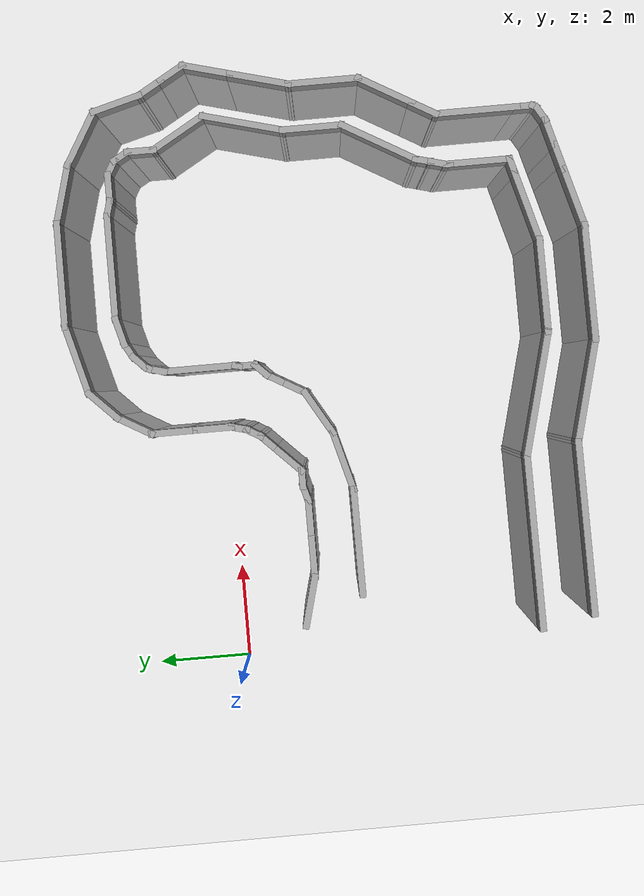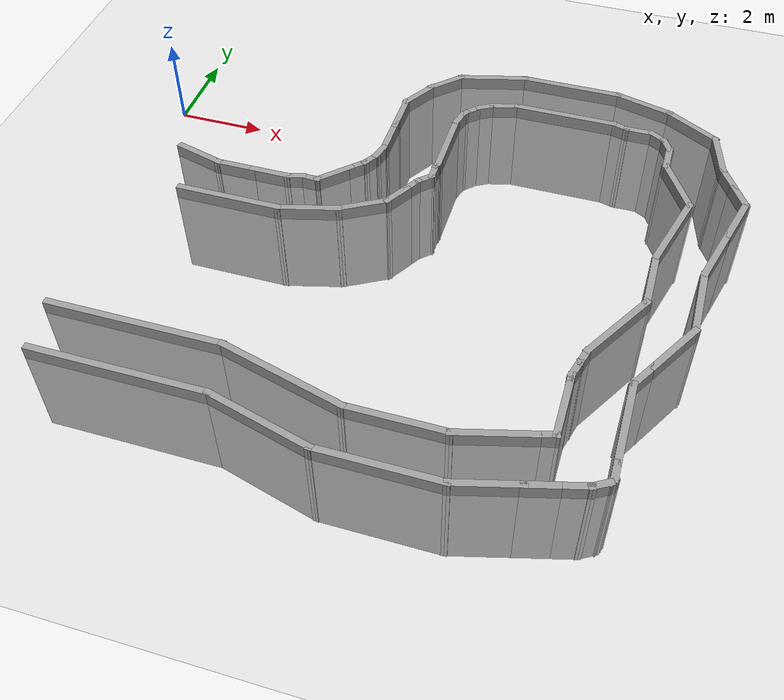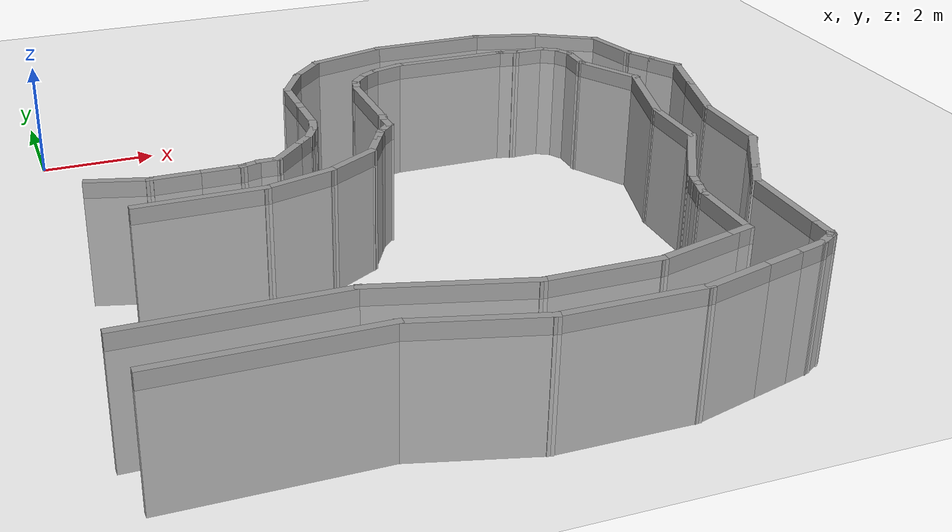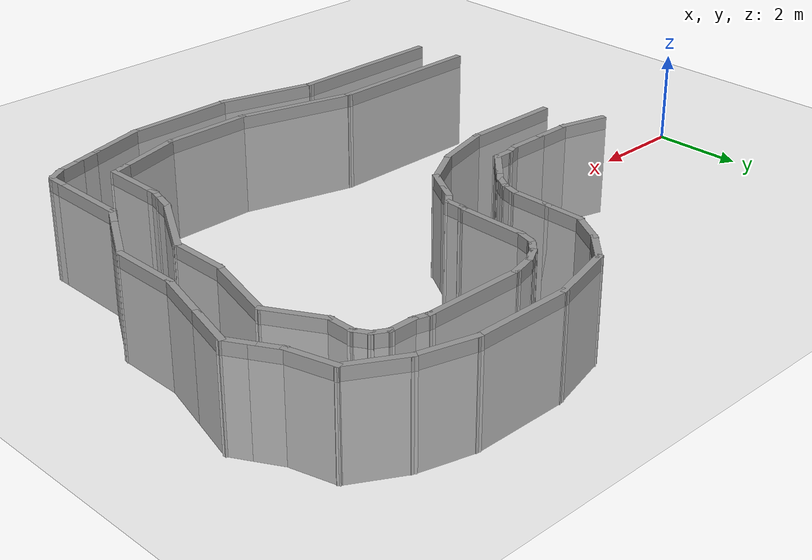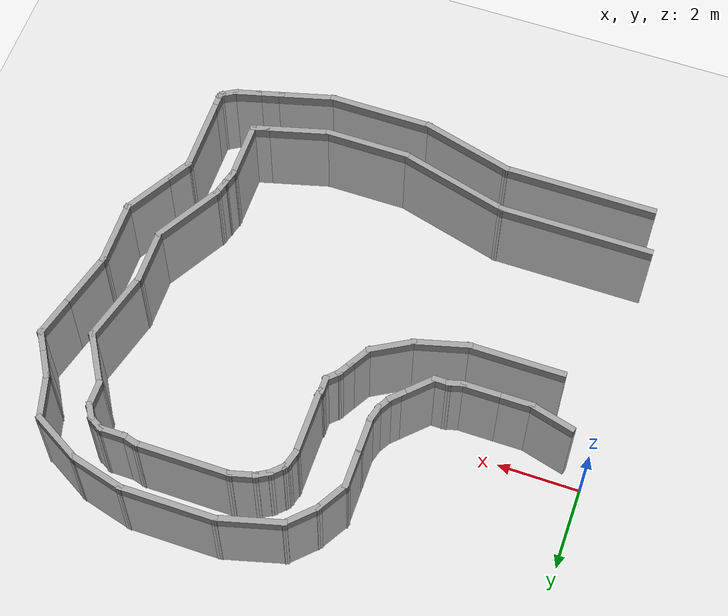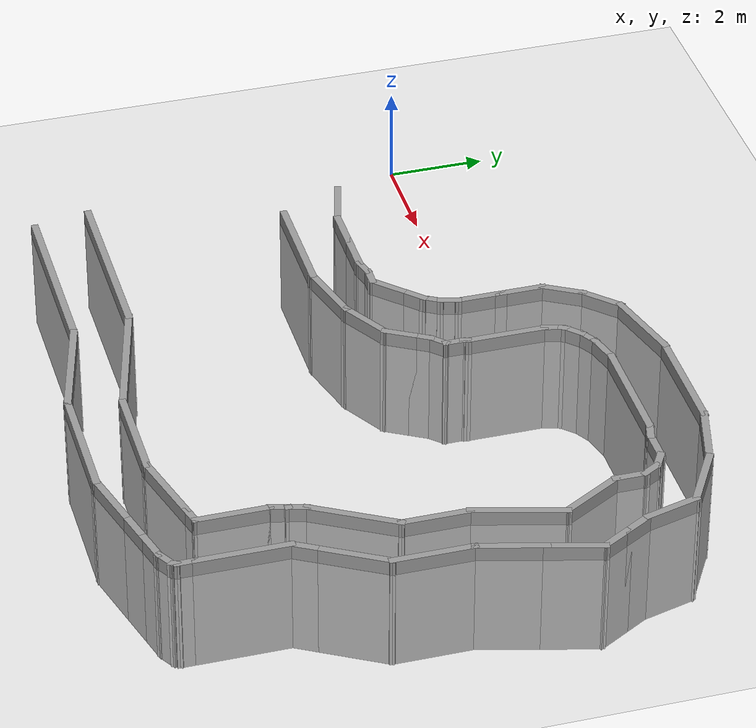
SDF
<sdf version="1.7">
 <world name="default">
  <model name="ground_plane">
   <static>1</static>
   <link name="link">
    <collision name="collision">
     <geometry><plane><normal>0 0 1</normal><size>100 100</size></plane></geometry>
     <surface>
      <contact><collide_bitmask>65535</collide_bitmask></contact>
      <friction><ode><mu>100</mu><mu2>50</mu2></ode></friction>
     </surface>
    </collision>
    <visual name="visual">
     <cast_shadows>0</cast_shadows>
     <geometry><plane><normal>0 0 1</normal><size>100 100</size></plane></geometry>
     <material>
      <script><uri>file://media/materials/scripts/gazebo.material</uri><name>Gazebo/Grey</name></script>
     </material>
    </visual>
   </link>
  </model>
  <model name="race_track">
   <pose>-1.60501 -2.80737 -2.21385 0 -0 0</pose>
   <link name="Wall_102">
    <collision name="Wall_102_Collision">
     <geometry><box><size>4 0.15 2.5</size></box></geometry>
     <pose>0 0 1.25 0 -0 0</pose>
    </collision>
    <visual name="Wall_102_Visual">
     <pose>0 0 1.25 0 -0 0</pose>
     <geometry><box><size>4 0.15 2.5</size></box></geometry>
     <material>
      <script><uri>file://media/materials/scripts/gazebo.material</uri><name>Gazebo/Grey</name></script>
      <ambient>1 1 1 1</ambient>
     </material>
     <meta><layer>0</layer></meta>
    </visual>
    <pose>3.60033 -3.80925 0 0 -0 0</pose>
   </link>
   <link name="Wall_103">
    <collision name="Wall_103_Collision">
     <geometry><box><size>3 0.15 2.5</size></box></geometry>
     <pose>0 0 1.25 0 -0 0</pose>
    </collision>
    <visual name="Wall_103_Visual">
     <pose>0 0 1.25 0 -0 0</pose>
     <geometry><box><size>3 0.15 2.5</size></box></geometry>
     <material>
      <script><uri>file://media/materials/scripts/gazebo.material</uri><name>Gazebo/Grey</name></script>
      <ambient>1 1 1 1</ambient>
     </material>
     <meta><layer>0</layer></meta>
    </visual>
    <pose>6.90177 -4.17807 0 0 -0 -0.261799</pose>
   </link>
   <link name="Wall_104">
    <collision name="Wall_104_Collision">
     <geometry><box><size>2.25 0.15 2.5</size></box></geometry>
     <pose>0 0 1.25 0 -0 0</pose>
    </collision>
    <visual name="Wall_104_Visual">
     <pose>0 0 1.25 0 -0 0</pose>
     <geometry><box><size>2.25 0.15 2.5</size></box></geometry>
     <material>
      <script><uri>file://media/materials/scripts/gazebo.material</uri><name>Gazebo/Grey</name></script>
      <ambient>1 1 1 1</ambient>
     </material>
     <meta><layer>0</layer></meta>
    </visual>
    <pose>9.32822 -4.54689 0 0 -0 0</pose>
   </link>
   <link name="Wall_105">
    <collision name="Wall_105_Collision">
     <geometry><box><size>1.75 0.15 2.5</size></box></geometry>
     <pose>0 0 1.25 0 -0 0</pose>
    </collision>
    <visual name="Wall_105_Visual">
     <pose>0 0 1.25 0 -0 0</pose>
     <geometry><box><size>1.75 0.15 2.5</size></box></geometry>
     <material>
      <script><uri>file://media/materials/scripts/gazebo.material</uri><name>Gazebo/Grey</name></script>
      <ambient>1 1 1 1</ambient>
     </material>
     <meta><layer>0</layer></meta>
    </visual>
    <pose>11.151 -4.33983 0 0 -0 0.261799</pose>
   </link>
   <link name="Wall_106">
    <collision name="Wall_106_Collision">
     <geometry><box><size>0.5 0.15 2.5</size></box></geometry>
     <pose>0 0 1.25 0 -0 0</pose>
    </collision>
    <visual name="Wall_106_Visual">
     <pose>0 0 1.25 0 -0 0</pose>
     <geometry><box><size>0.5 0.15 2.5</size></box></geometry>
     <material>
      <script><uri>file://media/materials/scripts/gazebo.material</uri><name>Gazebo/Grey</name></script>
      <ambient>1 1 1 1</ambient>
     </material>
     <meta><layer>0</layer></meta>
    </visual>
    <pose>12.0927 -4.08748 0 0 -0 0.261799</pose>
   </link>
   <link name="Wall_107">
    <collision name="Wall_107_Collision">
     <geometry><box><size>1.5 0.15 2.5</size></box></geometry>
     <pose>0 0 1.25 0 -0 0</pose>
    </collision>
    <visual name="Wall_107_Visual">
     <pose>0 0 1.25 0 -0 0</pose>
     <geometry><box><size>1.5 0.15 2.5</size></box></geometry>
     <material>
      <script><uri>file://media/materials/scripts/gazebo.material</uri><name>Gazebo/Grey</name></script>
      <ambient>1 1 1 1</ambient>
     </material>
     <meta><layer>0</layer></meta>
    </visual>
    <pose>12.2618 -3.36719 0 0 -0 1.5708</pose>
   </link>
   <link name="Wall_108">
    <collision name="Wall_108_Collision">
     <geometry><box><size>0.25 0.15 2.5</size></box></geometry>
     <pose>0 0 1.25 0 -0 0</pose>
    </collision>
    <visual name="Wall_108_Visual">
     <pose>0 0 1.25 0 -0 0</pose>
     <geometry><box><size>0.25 0.15 2.5</size></box></geometry>
     <material>
      <script><uri>file://media/materials/scripts/gazebo.material</uri><name>Gazebo/Grey</name></script>
      <ambient>1 1 1 1</ambient>
     </material>
     <meta><layer>0</layer></meta>
    </visual>
    <pose>12.2618 -2.64219 0 0 -0 1.5708</pose>
   </link>
   <link name="Wall_109">
    <collision name="Wall_109_Collision">
     <geometry><box><size>0.5 0.15 2.5</size></box></geometry>
     <pose>0 0 1.25 0 -0 0</pose>
    </collision>
    <visual name="Wall_109_Visual">
     <pose>0 0 1.25 0 -0 0</pose>
     <geometry><box><size>0.5 0.15 2.5</size></box></geometry>
     <material>
      <script><uri>file://media/materials/scripts/gazebo.material</uri><name>Gazebo/Grey</name></script>
      <ambient>1 1 1 1</ambient>
     </material>
     <meta><layer>0</layer></meta>
    </visual>
    <pose>12.3071 -2.42315 0 0 -0 1.309</pose>
   </link>
   <link name="Wall_110">
    <collision name="Wall_110_Collision">
     <geometry><box><size>0.15 0.15 2.5</size></box></geometry>
     <pose>0 0 1.25 0 -0 0</pose>
    </collision>
    <visual name="Wall_110_Visual">
     <pose>0 0 1.25 0 -0 0</pose>
     <geometry><box><size>0.15 0.15 2.5</size></box></geometry>
     <material>
      <script><uri>file://media/materials/scripts/gazebo.material</uri><name>Gazebo/Grey</name></script>
      <ambient>1 1 1 1</ambient>
     </material>
     <meta><layer>0</layer></meta>
    </visual>
    <pose>12.3524 -2.25411 0 0 -0 0</pose>
   </link>
   <link name="Wall_111">
    <collision name="Wall_111_Collision">
     <geometry><box><size>0.5 0.15 2.5</size></box></geometry>
     <pose>0 0 1.25 0 -0 0</pose>
    </collision>
    <visual name="Wall_111_Visual">
     <pose>0 0 1.25 0 -0 0</pose>
     <geometry><box><size>0.5 0.15 2.5</size></box></geometry>
     <material>
      <script><uri>file://media/materials/scripts/gazebo.material</uri><name>Gazebo/Grey</name></script>
      <ambient>1 1 1 1</ambient>
     </material>
     <meta><layer>0</layer></meta>
    </visual>
    <pose>12.3977 -2.08508 0 0 -0 1.309</pose>
   </link>
   <link name="Wall_112">
    <collision name="Wall_112_Collision">
     <geometry><box><size>2 0.15 2.5</size></box></geometry>
     <pose>0 0 1.25 0 -0 0</pose>
    </collision>
    <visual name="Wall_112_Visual">
     <pose>0 0 1.25 0 -0 0</pose>
     <geometry><box><size>2 0.15 2.5</size></box></geometry>
     <material>
      <script><uri>file://media/materials/scripts/gazebo.material</uri><name>Gazebo/Grey</name></script>
      <ambient>1 1 1 1</ambient>
     </material>
     <meta><layer>0</layer></meta>
    </visual>
    <pose>12.9054 -1.11497 0 0 -0 1.0472</pose>
   </link>
   <link name="Wall_113">
    <collision name="Wall_113_Collision">
     <geometry><box><size>1.5 0.15 2.5</size></box></geometry>
     <pose>0 0 1.25 0 -0 0</pose>
    </collision>
    <visual name="Wall_113_Visual">
     <pose>0 0 1.25 0 -0 0</pose>
     <geometry><box><size>1.5 0.15 2.5</size></box></geometry>
     <material>
      <script><uri>file://media/materials/scripts/gazebo.material</uri><name>Gazebo/Grey</name></script>
      <ambient>1 1 1 1</ambient>
     </material>
     <meta><layer>0</layer></meta>
    </visual>
    <pose>13.3679 0.361107 0 0 -0 1.5708</pose>
   </link>
   <link name="Wall_114">
    <collision name="Wall_114_Collision">
     <geometry><box><size>2 0.15 2.5</size></box></geometry>
     <pose>0 0 1.25 0 -0 0</pose>
    </collision>
    <visual name="Wall_114_Visual">
     <pose>0 0 1.25 0 -0 0</pose>
     <geometry><box><size>2 0.15 2.5</size></box></geometry>
     <material>
      <script><uri>file://media/materials/scripts/gazebo.material</uri><name>Gazebo/Grey</name></script>
      <ambient>1 1 1 1</ambient>
     </material>
     <meta><layer>0</layer></meta>
    </visual>
    <pose>13.6074 1.92959 0 0 -0 1.309</pose>
   </link>
   <link name="Wall_115">
    <collision name="Wall_115_Collision">
     <geometry><box><size>1.5 0.15 2.5</size></box></geometry>
     <pose>0 0 1.25 0 -0 0</pose>
    </collision>
    <visual name="Wall_115_Visual">
     <pose>0 0 1.25 0 -0 0</pose>
     <geometry><box><size>1.5 0.15 2.5</size></box></geometry>
     <material>
      <script><uri>file://media/materials/scripts/gazebo.material</uri><name>Gazebo/Grey</name></script>
      <ambient>1 1 1 1</ambient>
     </material>
     <meta><layer>0</layer></meta>
    </visual>
    <pose>13.5093 3.40764 0 0 -0 2.0944</pose>
   </link>
   <link name="Wall_116">
    <collision name="Wall_116_Collision">
     <geometry><box><size>0.75 0.15 2.5</size></box></geometry>
     <pose>0 0 1.25 0 -0 0</pose>
    </collision>
    <visual name="Wall_116_Visual">
     <pose>0 0 1.25 0 -0 0</pose>
     <geometry><box><size>0.75 0.15 2.5</size></box></geometry>
     <material>
      <script><uri>file://media/materials/scripts/gazebo.material</uri><name>Gazebo/Grey</name></script>
      <ambient>1 1 1 1</ambient>
     </material>
     <meta><layer>0</layer></meta>
    </visual>
    <pose>13.1718 4.2922 0 0 -0 1.5708</pose>
   </link>
   <link name="Wall_117">
    <collision name="Wall_117_Collision">
     <geometry><box><size>0.5 0.15 2.5</size></box></geometry>
     <pose>0 0 1.25 0 -0 0</pose>
    </collision>
    <visual name="Wall_117_Visual">
     <pose>0 0 1.25 0 -0 0</pose>
     <geometry><box><size>0.5 0.15 2.5</size></box></geometry>
     <material>
      <script><uri>file://media/materials/scripts/gazebo.material</uri><name>Gazebo/Grey</name></script>
      <ambient>1 1 1 1</ambient>
     </material>
     <meta><layer>0</layer></meta>
    </visual>
    <pose>13.0843 4.74376 0 0 -0 2.0944</pose>
   </link>
   <link name="Wall_118">
    <collision name="Wall_118_Collision">
     <geometry><box><size>0.5 0.15 2.5</size></box></geometry>
     <pose>0 0 1.25 0 -0 0</pose>
    </collision>
    <visual name="Wall_118_Visual">
     <pose>0 0 1.25 0 -0 0</pose>
     <geometry><box><size>0.5 0.15 2.5</size></box></geometry>
     <material>
      <script><uri>file://media/materials/scripts/gazebo.material</uri><name>Gazebo/Grey</name></script>
      <ambient>1 1 1 1</ambient>
     </material>
     <meta><layer>0</layer></meta>
    </visual>
    <pose>12.8452 4.98281 0 0 -0 2.61799</pose>
   </link>
   <link name="Wall_119">
    <collision name="Wall_119_Collision">
     <geometry><box><size>0.75 0.15 2.5</size></box></geometry>
     <pose>0 0 1.25 0 -0 0</pose>
    </collision>
    <visual name="Wall_119_Visual">
     <pose>0 0 1.25 0 -0 0</pose>
     <geometry><box><size>0.75 0.15 2.5</size></box></geometry>
     <material>
      <script><uri>file://media/materials/scripts/gazebo.material</uri><name>Gazebo/Grey</name></script>
      <ambient>1 1 1 1</ambient>
     </material>
     <meta><layer>0</layer></meta>
    </visual>
    <pose>12.3937 5.07031 0 0 -0 3.14159</pose>
   </link>
   <link name="Wall_120">
    <collision name="Wall_120_Collision">
     <geometry><box><size>0.5 0.15 2.5</size></box></geometry>
     <pose>0 0 1.25 0 -0 0</pose>
    </collision>
    <visual name="Wall_120_Visual">
     <pose>0 0 1.25 0 -0 0</pose>
     <geometry><box><size>0.5 0.15 2.5</size></box></geometry>
     <material>
      <script><uri>file://media/materials/scripts/gazebo.material</uri><name>Gazebo/Grey</name></script>
      <ambient>1 1 1 1</ambient>
     </material>
     <meta><layer>0</layer></meta>
    </visual>
    <pose>11.9246 5.11561 0 0 -0 2.87979</pose>
   </link>
   <link name="Wall_121">
    <collision name="Wall_121_Collision">
     <geometry><box><size>2.5 0.15 2.5</size></box></geometry>
     <pose>0 0 1.25 0 -0 0</pose>
    </collision>
    <visual name="Wall_121_Visual">
     <pose>0 0 1.25 0 -0 0</pose>
     <geometry><box><size>2.5 0.15 2.5</size></box></geometry>
     <material>
      <script><uri>file://media/materials/scripts/gazebo.material</uri><name>Gazebo/Grey</name></script>
      <ambient>1 1 1 1</ambient>
     </material>
     <meta><layer>0</layer></meta>
    </visual>
    <pose>10.5806 5.1609 0 0 -0 3.14159</pose>
   </link>
   <link name="Wall_122">
    <collision name="Wall_122_Collision">
     <geometry><box><size>0.75 0.15 2.5</size></box></geometry>
     <pose>0 0 1.25 0 -0 0</pose>
    </collision>
    <visual name="Wall_122_Visual">
     <pose>0 0 1.25 0 -0 0</pose>
     <geometry><box><size>0.75 0.15 2.5</size></box></geometry>
     <material>
      <script><uri>file://media/materials/scripts/gazebo.material</uri><name>Gazebo/Grey</name></script>
      <ambient>1 1 1 1</ambient>
     </material>
     <meta><layer>0</layer></meta>
    </visual>
    <pose>9.1158 5.08325 0 0 -0 -2.87979</pose>
   </link>
   <link name="Wall_123">
    <collision name="Wall_123_Collision">
     <geometry><box><size>0.5 0.15 2.5</size></box></geometry>
     <pose>0 0 1.25 0 -0 0</pose>
    </collision>
    <visual name="Wall_123_Visual">
     <pose>0 0 1.25 0 -0 0</pose>
     <geometry><box><size>0.5 0.15 2.5</size></box></geometry>
     <material>
      <script><uri>file://media/materials/scripts/gazebo.material</uri><name>Gazebo/Grey</name></script>
      <ambient>1 1 1 1</ambient>
     </material>
     <meta><layer>0</layer></meta>
    </visual>
    <pose>8.67447 4.91811 0 0 -0 -2.61799</pose>
   </link>
   <link name="Wall_124">
    <collision name="Wall_124_Collision">
     <geometry><box><size>0.5 0.15 2.5</size></box></geometry>
     <pose>0 0 1.25 0 -0 0</pose>
    </collision>
    <visual name="Wall_124_Visual">
     <pose>0 0 1.25 0 -0 0</pose>
     <geometry><box><size>0.5 0.15 2.5</size></box></geometry>
     <material>
      <script><uri>file://media/materials/scripts/gazebo.material</uri><name>Gazebo/Grey</name></script>
      <ambient>1 1 1 1</ambient>
     </material>
     <meta><layer>0</layer></meta>
    </visual>
    <pose>8.39917 4.70686 0 0 -0 -2.35619</pose>
   </link>
   <link name="Wall_125">
    <collision name="Wall_125_Collision">
     <geometry><box><size>0.25 0.15 2.5</size></box></geometry>
     <pose>0 0 1.25 0 -0 0</pose>
    </collision>
    <visual name="Wall_125_Visual">
     <pose>0 0 1.25 0 -0 0</pose>
     <geometry><box><size>0.25 0.15 2.5</size></box></geometry>
     <material>
      <script><uri>file://media/materials/scripts/gazebo.material</uri><name>Gazebo/Grey</name></script>
      <ambient>1 1 1 1</ambient>
     </material>
     <meta><layer>0</layer></meta>
    </visual>
    <pose>8.25043 4.53982 0 0 -0 -2.0944</pose>
   </link>
   <link name="Wall_126">
    <collision name="Wall_126_Collision">
     <geometry><box><size>0.5 0.15 2.5</size></box></geometry>
     <pose>0 0 1.25 0 -0 0</pose>
    </collision>
    <visual name="Wall_126_Visual">
     <pose>0 0 1.25 0 -0 0</pose>
     <geometry><box><size>0.5 0.15 2.5</size></box></geometry>
     <material>
      <script><uri>file://media/materials/scripts/gazebo.material</uri><name>Gazebo/Grey</name></script>
      <ambient>1 1 1 1</ambient>
     </material>
     <meta><layer>0</layer></meta>
    </visual>
    <pose>8.18013 4.32748 0 0 -0 -1.8326</pose>
   </link>
   <link name="Wall_127">
    <collision name="Wall_127_Collision">
     <geometry><box><size>1.75 0.15 2.5</size></box></geometry>
     <pose>0 0 1.25 0 -0 0</pose>
    </collision>
    <visual name="Wall_127_Visual">
     <pose>0 0 1.25 0 -0 0</pose>
     <geometry><box><size>1.75 0.15 2.5</size></box></geometry>
     <material>
      <script><uri>file://media/materials/scripts/gazebo.material</uri><name>Gazebo/Grey</name></script>
      <ambient>1 1 1 1</ambient>
     </material>
     <meta><layer>0</layer></meta>
    </visual>
    <pose>8.13484 3.35844 0 0 -0 -1.5708</pose>
   </link>
   <link name="Wall_128">
    <collision name="Wall_128_Collision">
     <geometry><box><size>0.25 0.15 2.5</size></box></geometry>
     <pose>0 0 1.25 0 -0 0</pose>
    </collision>
    <visual name="Wall_128_Visual">
     <pose>0 0 1.25 0 -0 0</pose>
     <geometry><box><size>0.25 0.15 2.5</size></box></geometry>
     <material>
      <script><uri>file://media/materials/scripts/gazebo.material</uri><name>Gazebo/Grey</name></script>
      <ambient>1 1 1 1</ambient>
     </material>
     <meta><layer>0</layer></meta>
    </visual>
    <pose>8.1219 2.51015 0 0 -0 -1.8326</pose>
   </link>
   <link name="Wall_129">
    <collision name="Wall_129_Collision">
     <geometry><box><size>0.5 0.15 2.5</size></box></geometry>
     <pose>0 0 1.25 0 -0 0</pose>
    </collision>
    <visual name="Wall_129_Visual">
     <pose>0 0 1.25 0 -0 0</pose>
     <geometry><box><size>0.5 0.15 2.5</size></box></geometry>
     <material>
      <script><uri>file://media/materials/scripts/gazebo.material</uri><name>Gazebo/Grey</name></script>
      <ambient>1 1 1 1</ambient>
     </material>
     <meta><layer>0</layer></meta>
    </visual>
    <pose>8.10896 2.28685 0 0 -0 -1.5708</pose>
   </link>
   <link name="Wall_130">
    <collision name="Wall_130_Collision">
     <geometry><box><size>0.5 0.15 2.5</size></box></geometry>
     <pose>0 0 1.25 0 -0 0</pose>
    </collision>
    <visual name="Wall_130_Visual">
     <pose>0 0 1.25 0 -0 0</pose>
     <geometry><box><size>0.5 0.15 2.5</size></box></geometry>
     <material>
      <script><uri>file://media/materials/scripts/gazebo.material</uri><name>Gazebo/Grey</name></script>
      <ambient>1 1 1 1</ambient>
     </material>
     <meta><layer>0</layer></meta>
    </visual>
    <pose>7.98521 1.98811 0 0 -0 -2.35619</pose>
   </link>
   <link name="Wall_131">
    <collision name="Wall_131_Collision">
     <geometry><box><size>0.5 0.15 2.5</size></box></geometry>
     <pose>0 0 1.25 0 -0 0</pose>
    </collision>
    <visual name="Wall_131_Visual">
     <pose>0 0 1.25 0 -0 0</pose>
     <geometry><box><size>0.5 0.15 2.5</size></box></geometry>
     <material>
      <script><uri>file://media/materials/scripts/gazebo.material</uri><name>Gazebo/Grey</name></script>
      <ambient>1 1 1 1</ambient>
     </material>
     <meta><layer>0</layer></meta>
    </visual>
    <pose>7.77397 1.71281 0 0 -0 -2.0944</pose>
   </link>
   <link name="Wall_132">
    <collision name="Wall_132_Collision">
     <geometry><box><size>0.75 0.15 2.5</size></box></geometry>
     <pose>0 0 1.25 0 -0 0</pose>
    </collision>
    <visual name="Wall_132_Visual">
     <pose>0 0 1.25 0 -0 0</pose>
     <geometry><box><size>0.75 0.15 2.5</size></box></geometry>
     <material>
      <script><uri>file://media/materials/scripts/gazebo.material</uri><name>Gazebo/Grey</name></script>
      <ambient>1 1 1 1</ambient>
     </material>
     <meta><layer>0</layer></meta>
    </visual>
    <pose>7.53647 1.30145 0 0 -0 -2.0944</pose>
   </link>
   <link name="Wall_133">
    <collision name="Wall_133_Collision">
     <geometry><box><size>1.25 0.15 2.5</size></box></geometry>
     <pose>0 0 1.25 0 -0 0</pose>
    </collision>
    <visual name="Wall_133_Visual">
     <pose>0 0 1.25 0 -0 0</pose>
     <geometry><box><size>1.25 0.15 2.5</size></box></geometry>
     <material>
      <script><uri>file://media/materials/scripts/gazebo.material</uri><name>Gazebo/Grey</name></script>
      <ambient>1 1 1 1</ambient>
     </material>
     <meta><layer>0</layer></meta>
    </visual>
    <pose>6.91016 0.76664 0 0 -0 -2.61799</pose>
   </link>
   <link name="Wall_134">
    <collision name="Wall_134_Collision">
     <geometry><box><size>1.5 0.15 2.5</size></box></geometry>
     <pose>0 0 1.25 0 -0 0</pose>
    </collision>
    <visual name="Wall_134_Visual">
     <pose>0 0 1.25 0 -0 0</pose>
     <geometry><box><size>1.5 0.15 2.5</size></box></geometry>
     <material>
      <script><uri>file://media/materials/scripts/gazebo.material</uri><name>Gazebo/Grey</name></script>
      <ambient>1 1 1 1</ambient>
     </material>
     <meta><layer>0</layer></meta>
    </visual>
    <pose>5.78184 0.316937 0 0 -0 -2.87979</pose>
   </link>
   <link name="Wall_135">
    <collision name="Wall_135_Collision">
     <geometry><box><size>2.5 0.15 2.5</size></box></geometry>
     <pose>0 0 1.25 0 -0 0</pose>
    </collision>
    <visual name="Wall_135_Visual">
     <pose>0 0 1.25 0 -0 0</pose>
     <geometry><box><size>2.5 0.15 2.5</size></box></geometry>
     <material>
      <script><uri>file://media/materials/scripts/gazebo.material</uri><name>Gazebo/Grey</name></script>
      <ambient>1 1 1 1</ambient>
     </material>
     <meta><layer>0</layer></meta>
    </visual>
    <pose>3.95484 0.142234 0 0 -0 3.14159</pose>
   </link>
   <link name="Wall_20">
    <collision name="Wall_20_Collision">
     <geometry><box><size>4 0.15 2.5</size></box></geometry>
     <pose>0 0 1.25 0 -0 0</pose>
    </collision>
    <visual name="Wall_20_Visual">
     <pose>0 0 1.25 0 -0 0</pose>
     <geometry><box><size>4 0.15 2.5</size></box></geometry>
     <material>
      <script><uri>file://media/materials/scripts/gazebo.material</uri><name>Gazebo/Grey</name></script>
      <ambient>1 1 1 1</ambient>
     </material>
     <meta><layer>0</layer></meta>
    </visual>
    <pose>3.82128 -4.98741 0 0 -0 0</pose>
   </link>
   <link name="Wall_21">
    <collision name="Wall_21_Collision">
     <geometry><box><size>2.5 0.15 2.5</size></box></geometry>
     <pose>0 0 1.25 0 -0 0</pose>
    </collision>
    <visual name="Wall_21_Visual">
     <pose>0 0 1.25 0 -0 0</pose>
     <geometry><box><size>2.5 0.15 2.5</size></box></geometry>
     <material>
      <script><uri>file://media/materials/scripts/gazebo.material</uri><name>Gazebo/Grey</name></script>
      <ambient>1 1 1 1</ambient>
     </material>
     <meta><layer>0</layer></meta>
    </visual>
    <pose>6.88124 -5.29152 0 0 -0 -0.261799</pose>
   </link>
   <link name="Wall_22">
    <collision name="Wall_22_Collision">
     <geometry><box><size>2.75 0.15 2.5</size></box></geometry>
     <pose>0 0 1.25 0 -0 0</pose>
    </collision>
    <visual name="Wall_22_Visual">
     <pose>0 0 1.25 0 -0 0</pose>
     <geometry><box><size>2.75 0.15 2.5</size></box></geometry>
     <material>
      <script><uri>file://media/materials/scripts/gazebo.material</uri><name>Gazebo/Grey</name></script>
      <ambient>1 1 1 1</ambient>
     </material>
     <meta><layer>0</layer></meta>
    </visual>
    <pose>9.31621 -5.59563 0 0 -0 0</pose>
   </link>
   <link name="Wall_23">
    <collision name="Wall_23_Collision">
     <geometry><box><size>1.5 0.15 2.5</size></box></geometry>
     <pose>0 0 1.25 0 -0 0</pose>
    </collision>
    <visual name="Wall_23_Visual">
     <pose>0 0 1.25 0 -0 0</pose>
     <geometry><box><size>1.5 0.15 2.5</size></box></geometry>
     <material>
      <script><uri>file://media/materials/scripts/gazebo.material</uri><name>Gazebo/Grey</name></script>
      <ambient>1 1 1 1</ambient>
     </material>
     <meta><layer>0</layer></meta>
    </visual>
    <pose>11.2682 -5.42093 0 0 -0 0.261799</pose>
   </link>
   <link name="Wall_24">
    <collision name="Wall_24_Collision">
     <geometry><box><size>0.75 0.15 2.5</size></box></geometry>
     <pose>0 0 1.25 0 -0 0</pose>
    </collision>
    <visual name="Wall_24_Visual">
     <pose>0 0 1.25 0 -0 0</pose>
     <geometry><box><size>0.75 0.15 2.5</size></box></geometry>
     <material>
      <script><uri>file://media/materials/scripts/gazebo.material</uri><name>Gazebo/Grey</name></script>
      <ambient>1 1 1 1</ambient>
     </material>
     <meta><layer>0</layer></meta>
    </visual>
    <pose>12.21 -5.16858 0 0 -0 0.261799</pose>
   </link>
   <link name="Wall_25">
    <collision name="Wall_25_Collision">
     <geometry><box><size>0.75 0.15 2.5</size></box></geometry>
     <pose>0 0 1.25 0 -0 0</pose>
    </collision>
    <visual name="Wall_25_Visual">
     <pose>0 0 1.25 0 -0 0</pose>
     <geometry><box><size>0.75 0.15 2.5</size></box></geometry>
     <material>
      <script><uri>file://media/materials/scripts/gazebo.material</uri><name>Gazebo/Grey</name></script>
      <ambient>1 1 1 1</ambient>
     </material>
     <meta><layer>0</layer></meta>
    </visual>
    <pose>12.7895 -5.01329 0 0 -0 0.261799</pose>
   </link>
   <link name="Wall_26">
    <collision name="Wall_26_Collision">
     <geometry><box><size>0.5 0.15 2.5</size></box></geometry>
     <pose>0 0 1.25 0 -0 0</pose>
    </collision>
    <visual name="Wall_26_Visual">
     <pose>0 0 1.25 0 -0 0</pose>
     <geometry><box><size>0.5 0.15 2.5</size></box></geometry>
     <material>
      <script><uri>file://media/materials/scripts/gazebo.material</uri><name>Gazebo/Grey</name></script>
      <ambient>1 1 1 1</ambient>
     </material>
     <meta><layer>0</layer></meta>
    </visual>
    <pose>13.2309 -4.84814 0 0 -0 0.523599</pose>
   </link>
   <link name="Wall_27">
    <collision name="Wall_27_Collision">
     <geometry><box><size>0.25 0.15 2.5</size></box></geometry>
     <pose>0 0 1.25 0 -0 0</pose>
    </collision>
    <visual name="Wall_27_Visual">
     <pose>0 0 1.25 0 -0 0</pose>
     <geometry><box><size>0.25 0.15 2.5</size></box></geometry>
     <material>
      <script><uri>file://media/materials/scripts/gazebo.material</uri><name>Gazebo/Grey</name></script>
      <ambient>1 1 1 1</ambient>
     </material>
     <meta><layer>0</layer></meta>
    </visual>
    <pose>13.4074 -4.71734 0 0 -0 1.0472</pose>
   </link>
   <link name="Wall_28">
    <collision name="Wall_28_Collision">
     <geometry><box><size>0.5 0.15 2.5</size></box></geometry>
     <pose>0 0 1.25 0 -0 0</pose>
    </collision>
    <visual name="Wall_28_Visual">
     <pose>0 0 1.25 0 -0 0</pose>
     <geometry><box><size>0.5 0.15 2.5</size></box></geometry>
     <material>
      <script><uri>file://media/materials/scripts/gazebo.material</uri><name>Gazebo/Grey</name></script>
      <ambient>1 1 1 1</ambient>
     </material>
     <meta><layer>0</layer></meta>
    </visual>
    <pose>13.4324 -4.49904 0 0 -0 1.5708</pose>
   </link>
   <link name="Wall_30">
    <collision name="Wall_30_Collision">
     <geometry><box><size>2 0.15 2.5</size></box></geometry>
     <pose>0 0 1.25 0 -0 0</pose>
    </collision>
    <visual name="Wall_30_Visual">
     <pose>0 0 1.25 0 -0 0</pose>
     <geometry><box><size>2 0.15 2.5</size></box></geometry>
     <material>
      <script><uri>file://media/materials/scripts/gazebo.material</uri><name>Gazebo/Grey</name></script>
      <ambient>1 1 1 1</ambient>
     </material>
     <meta><layer>0</layer></meta>
    </visual>
    <pose>13.4324 -3.39904 0 0 -0 1.5708</pose>
   </link>
   <link name="Wall_31">
    <collision name="Wall_31_Collision">
     <geometry><box><size>0.75 0.15 2.5</size></box></geometry>
     <pose>0 0 1.25 0 -0 0</pose>
    </collision>
    <visual name="Wall_31_Visual">
     <pose>0 0 1.25 0 -0 0</pose>
     <geometry><box><size>0.75 0.15 2.5</size></box></geometry>
     <material>
      <script><uri>file://media/materials/scripts/gazebo.material</uri><name>Gazebo/Grey</name></script>
      <ambient>1 1 1 1</ambient>
     </material>
     <meta><layer>0</layer></meta>
    </visual>
    <pose>13.5824 -2.21423 0 0 -0 1.0472</pose>
   </link>
   <link name="Wall_32">
    <collision name="Wall_32_Collision">
     <geometry><box><size>1.5 0.15 2.5</size></box></geometry>
     <pose>0 0 1.25 0 -0 0</pose>
    </collision>
    <visual name="Wall_32_Visual">
     <pose>0 0 1.25 0 -0 0</pose>
     <geometry><box><size>1.5 0.15 2.5</size></box></geometry>
     <material>
      <script><uri>file://media/materials/scripts/gazebo.material</uri><name>Gazebo/Grey</name></script>
      <ambient>1 1 1 1</ambient>
     </material>
     <meta><layer>0</layer></meta>
    </visual>
    <pose>14.0699 -1.36986 0 0 -0 1.0472</pose>
   </link>
   <link name="Wall_33">
    <collision name="Wall_33_Collision">
     <geometry><box><size>1.75 0.15 2.5</size></box></geometry>
     <pose>0 0 1.25 0 -0 0</pose>
    </collision>
    <visual name="Wall_33_Visual">
     <pose>0 0 1.25 0 -0 0</pose>
     <geometry><box><size>1.75 0.15 2.5</size></box></geometry>
     <material>
      <script><uri>file://media/materials/scripts/gazebo.material</uri><name>Gazebo/Grey</name></script>
      <ambient>1 1 1 1</ambient>
     </material>
     <meta><layer>0</layer></meta>
    </visual>
    <pose>14.4074 0.01471 0 0 -0 1.5708</pose>
   </link>
   <link name="Wall_34">
    <collision name="Wall_34_Collision">
     <geometry><box><size>1.5 0.15 2.5</size></box></geometry>
     <pose>0 0 1.25 0 -0 0</pose>
    </collision>
    <visual name="Wall_34_Visual">
     <pose>0 0 1.25 0 -0 0</pose>
     <geometry><box><size>1.5 0.15 2.5</size></box></geometry>
     <material>
      <script><uri>file://media/materials/scripts/gazebo.material</uri><name>Gazebo/Grey</name></script>
      <ambient>1 1 1 1</ambient>
     </material>
     <meta><layer>0</layer></meta>
    </visual>
    <pose>14.5821 1.46671 0 0 -0 1.309</pose>
   </link>
   <link name="Wall_35">
    <collision name="Wall_35_Collision">
     <geometry><box><size>1.25 0.15 2.5</size></box></geometry>
     <pose>0 0 1.25 0 -0 0</pose>
    </collision>
    <visual name="Wall_35_Visual">
     <pose>0 0 1.25 0 -0 0</pose>
     <geometry><box><size>1.25 0.15 2.5</size></box></geometry>
     <material>
      <script><uri>file://media/materials/scripts/gazebo.material</uri><name>Gazebo/Grey</name></script>
      <ambient>1 1 1 1</ambient>
     </material>
     <meta><layer>0</layer></meta>
    </visual>
    <pose>14.8992 2.64997 0 0 -0 1.309</pose>
   </link>
   <link name="Wall_36">
    <collision name="Wall_36_Collision">
     <geometry><box><size>0.75 0.15 2.5</size></box></geometry>
     <pose>0 0 1.25 0 -0 0</pose>
    </collision>
    <visual name="Wall_36_Visual">
     <pose>0 0 1.25 0 -0 0</pose>
     <geometry><box><size>0.75 0.15 2.5</size></box></geometry>
     <material>
      <script><uri>file://media/materials/scripts/gazebo.material</uri><name>Gazebo/Grey</name></script>
      <ambient>1 1 1 1</ambient>
     </material>
     <meta><layer>0</layer></meta>
    </visual>
    <pose>14.8915 3.44104 0 0 -0 2.0944</pose>
   </link>
   <link name="Wall_37">
    <collision name="Wall_37_Collision">
     <geometry><box><size>0.75 0.15 2.5</size></box></geometry>
     <pose>0 0 1.25 0 -0 0</pose>
    </collision>
    <visual name="Wall_37_Visual">
     <pose>0 0 1.25 0 -0 0</pose>
     <geometry><box><size>0.75 0.15 2.5</size></box></geometry>
     <material>
      <script><uri>file://media/materials/scripts/gazebo.material</uri><name>Gazebo/Grey</name></script>
      <ambient>1 1 1 1</ambient>
     </material>
     <meta><layer>0</layer></meta>
    </visual>
    <pose>14.5915 3.96065 0 0 -0 2.0944</pose>
   </link>
   <link name="Wall_38">
    <collision name="Wall_38_Collision">
     <geometry><box><size>1.25 0.15 2.5</size></box></geometry>
     <pose>0 0 1.25 0 -0 0</pose>
    </collision>
    <visual name="Wall_38_Visual">
     <pose>0 0 1.25 0 -0 0</pose>
     <geometry><box><size>1.25 0.15 2.5</size></box></geometry>
     <material>
      <script><uri>file://media/materials/scripts/gazebo.material</uri><name>Gazebo/Grey</name></script>
      <ambient>1 1 1 1</ambient>
     </material>
     <meta><layer>0</layer></meta>
    </visual>
    <pose>14.2992 4.75172 0 0 -0 1.8326</pose>
   </link>
   <link name="Wall_39">
    <collision name="Wall_39_Collision">
     <geometry><box><size>1.5 0.15 2.5</size></box></geometry>
     <pose>0 0 1.25 0 -0 0</pose>
    </collision>
    <visual name="Wall_39_Visual">
     <pose>0 0 1.25 0 -0 0</pose>
     <geometry><box><size>1.5 0.15 2.5</size></box></geometry>
     <material>
      <script><uri>file://media/materials/scripts/gazebo.material</uri><name>Gazebo/Grey</name></script>
      <ambient>1 1 1 1</ambient>
     </material>
     <meta><layer>0</layer></meta>
    </visual>
    <pose>13.5723 5.62048 0 0 -0 2.61799</pose>
   </link>
   <link name="Wall_40">
    <collision name="Wall_40_Collision">
     <geometry><box><size>1.5 0.15 2.5</size></box></geometry>
     <pose>0 0 1.25 0 -0 0</pose>
    </collision>
    <visual name="Wall_40_Visual">
     <pose>0 0 1.25 0 -0 0</pose>
     <geometry><box><size>1.5 0.15 2.5</size></box></geometry>
     <material>
      <script><uri>file://media/materials/scripts/gazebo.material</uri><name>Gazebo/Grey</name></script>
      <ambient>1 1 1 1</ambient>
     </material>
     <meta><layer>0</layer></meta>
    </visual>
    <pose>12.3357 6.13268 0 0 -0 2.87979</pose>
   </link>
   <link name="Wall_41">
    <collision name="Wall_41_Collision">
     <geometry><box><size>2.5 0.15 2.5</size></box></geometry>
     <pose>0 0 1.25 0 -0 0</pose>
    </collision>
    <visual name="Wall_41_Visual">
     <pose>0 0 1.25 0 -0 0</pose>
     <geometry><box><size>2.5 0.15 2.5</size></box></geometry>
     <material>
      <script><uri>file://media/materials/scripts/gazebo.material</uri><name>Gazebo/Grey</name></script>
      <ambient>1 1 1 1</ambient>
     </material>
     <meta><layer>0</layer></meta>
    </visual>
    <pose>10.5087 6.30738 0 0 -0 3.14159</pose>
   </link>
   <link name="Wall_42">
    <collision name="Wall_42_Collision">
     <geometry><box><size>1.75 0.15 2.5</size></box></geometry>
     <pose>0 0 1.25 0 -0 0</pose>
    </collision>
    <visual name="Wall_42_Visual">
     <pose>0 0 1.25 0 -0 0</pose>
     <geometry><box><size>1.75 0.15 2.5</size></box></geometry>
     <material>
      <script><uri>file://media/materials/scripts/gazebo.material</uri><name>Gazebo/Grey</name></script>
      <ambient>1 1 1 1</ambient>
     </material>
     <meta><layer>0</layer></meta>
    </visual>
    <pose>8.56096 6.10033 0 0 -0 -2.87979</pose>
   </link>
   <link name="Wall_43">
    <collision name="Wall_43_Collision">
     <geometry><box><size>1 0.15 2.5</size></box></geometry>
     <pose>0 0 1.25 0 -0 0</pose>
    </collision>
    <visual name="Wall_43_Visual">
     <pose>0 0 1.25 0 -0 0</pose>
     <geometry><box><size>1 0.15 2.5</size></box></geometry>
     <material>
      <script><uri>file://media/materials/scripts/gazebo.material</uri><name>Gazebo/Grey</name></script>
      <ambient>1 1 1 1</ambient>
     </material>
     <meta><layer>0</layer></meta>
    </visual>
    <pose>7.4877 5.59275 0 0 -0 -2.35619</pose>
   </link>
   <link name="Wall_44">
    <collision name="Wall_44_Collision">
     <geometry><box><size>1 0.15 2.5</size></box></geometry>
     <pose>0 0 1.25 0 -0 0</pose>
    </collision>
    <visual name="Wall_44_Visual">
     <pose>0 0 1.25 0 -0 0</pose>
     <geometry><box><size>1 0.15 2.5</size></box></geometry>
     <material>
      <script><uri>file://media/materials/scripts/gazebo.material</uri><name>Gazebo/Grey</name></script>
      <ambient>1 1 1 1</ambient>
     </material>
     <meta><layer>0</layer></meta>
    </visual>
    <pose>6.97468 4.92417 0 0 -0 -2.0944</pose>
   </link>
   <link name="Wall_45">
    <collision name="Wall_45_Collision">
     <geometry><box><size>1 0.15 2.5</size></box></geometry>
     <pose>0 0 1.25 0 -0 0</pose>
    </collision>
    <visual name="Wall_45_Visual">
     <pose>0 0 1.25 0 -0 0</pose>
     <geometry><box><size>1 0.15 2.5</size></box></geometry>
     <material>
      <script><uri>file://media/materials/scripts/gazebo.material</uri><name>Gazebo/Grey</name></script>
      <ambient>1 1 1 1</ambient>
     </material>
     <meta><layer>0</layer></meta>
    </visual>
    <pose>6.76218 4.13111 0 0 -0 -1.5708</pose>
   </link>
   <link name="Wall_46">
    <collision name="Wall_46_Collision">
     <geometry><box><size>0.25 0.15 2.5</size></box></geometry>
     <pose>0 0 1.25 0 -0 0</pose>
    </collision>
    <visual name="Wall_46_Visual">
     <pose>0 0 1.25 0 -0 0</pose>
     <geometry><box><size>0.25 0.15 2.5</size></box></geometry>
     <material>
      <script><uri>file://media/materials/scripts/gazebo.material</uri><name>Gazebo/Grey</name></script>
      <ambient>1 1 1 1</ambient>
     </material>
     <meta><layer>0</layer></meta>
    </visual>
    <pose>6.76218 3.65611 0 0 -0 -1.5708</pose>
   </link>
   <link name="Wall_47">
    <collision name="Wall_47_Collision">
     <geometry><box><size>1 0.15 2.5</size></box></geometry>
     <pose>0 0 1.25 0 -0 0</pose>
    </collision>
    <visual name="Wall_47_Visual">
     <pose>0 0 1.25 0 -0 0</pose>
     <geometry><box><size>1 0.15 2.5</size></box></geometry>
     <material>
      <script><uri>file://media/materials/scripts/gazebo.material</uri><name>Gazebo/Grey</name></script>
      <ambient>1 1 1 1</ambient>
     </material>
     <meta><layer>0</layer></meta>
    </visual>
    <pose>6.76218 3.18111 0 0 -0 -1.5708</pose>
   </link>
   <link name="Wall_48">
    <collision name="Wall_48_Collision">
     <geometry><box><size>0.5 0.15 2.5</size></box></geometry>
     <pose>0 0 1.25 0 -0 0</pose>
    </collision>
    <visual name="Wall_48_Visual">
     <pose>0 0 1.25 0 -0 0</pose>
     <geometry><box><size>0.5 0.15 2.5</size></box></geometry>
     <material>
      <script><uri>file://media/materials/scripts/gazebo.material</uri><name>Gazebo/Grey</name></script>
      <ambient>1 1 1 1</ambient>
     </material>
     <meta><layer>0</layer></meta>
    </visual>
    <pose>6.71688 2.58707 0 0 -0 -1.8326</pose>
   </link>
   <link name="Wall_49">
    <collision name="Wall_49_Collision">
     <geometry><box><size>0.5 0.15 2.5</size></box></geometry>
     <pose>0 0 1.25 0 -0 0</pose>
    </collision>
    <visual name="Wall_49_Visual">
     <pose>0 0 1.25 0 -0 0</pose>
     <geometry><box><size>0.5 0.15 2.5</size></box></geometry>
     <material>
      <script><uri>file://media/materials/scripts/gazebo.material</uri><name>Gazebo/Grey</name></script>
      <ambient>1 1 1 1</ambient>
     </material>
     <meta><layer>0</layer></meta>
    </visual>
    <pose>6.58409 2.26648 0 0 -0 -2.0944</pose>
   </link>
   <link name="Wall_50">
    <collision name="Wall_50_Collision">
     <geometry><box><size>0.5 0.15 2.5</size></box></geometry>
     <pose>0 0 1.25 0 -0 0</pose>
    </collision>
    <visual name="Wall_50_Visual">
     <pose>0 0 1.25 0 -0 0</pose>
     <geometry><box><size>0.5 0.15 2.5</size></box></geometry>
     <material>
      <script><uri>file://media/materials/scripts/gazebo.material</uri><name>Gazebo/Grey</name></script>
      <ambient>1 1 1 1</ambient>
     </material>
     <meta><layer>0</layer></meta>
    </visual>
    <pose>6.37285 1.99118 0 0 -0 -2.35619</pose>
   </link>
   <link name="Wall_51">
    <collision name="Wall_51_Collision">
     <geometry><box><size>1 0.15 2.5</size></box></geometry>
     <pose>0 0 1.25 0 -0 0</pose>
    </collision>
    <visual name="Wall_51_Visual">
     <pose>0 0 1.25 0 -0 0</pose>
     <geometry><box><size>1 0.15 2.5</size></box></geometry>
     <material>
      <script><uri>file://media/materials/scripts/gazebo.material</uri><name>Gazebo/Grey</name></script>
      <ambient>1 1 1 1</ambient>
     </material>
     <meta><layer>0</layer></meta>
    </visual>
    <pose>5.94858 1.56692 0 0 -0 -2.35619</pose>
   </link>
   <link name="Wall_52">
    <collision name="Wall_52_Collision">
     <geometry><box><size>0.5 0.15 2.5</size></box></geometry>
     <pose>0 0 1.25 0 -0 0</pose>
    </collision>
    <visual name="Wall_52_Visual">
     <pose>0 0 1.25 0 -0 0</pose>
     <geometry><box><size>0.5 0.15 2.5</size></box></geometry>
     <material>
      <script><uri>file://media/materials/scripts/gazebo.material</uri><name>Gazebo/Grey</name></script>
      <ambient>1 1 1 1</ambient>
     </material>
     <meta><layer>0</layer></meta>
    </visual>
    <pose>5.47306 1.2664 0 0 -0 3.14159</pose>
   </link>
   <link name="Wall_53">
    <collision name="Wall_53_Collision">
     <geometry><box><size>0.5 0.15 2.5</size></box></geometry>
     <pose>0 0 1.25 0 -0 0</pose>
    </collision>
    <visual name="Wall_53_Visual">
     <pose>0 0 1.25 0 -0 0</pose>
     <geometry><box><size>0.5 0.15 2.5</size></box></geometry>
     <material>
      <script><uri>file://media/materials/scripts/gazebo.material</uri><name>Gazebo/Grey</name></script>
      <ambient>1 1 1 1</ambient>
     </material>
     <meta><layer>0</layer></meta>
    </visual>
    <pose>5.12903 1.22111 0 0 -0 -2.87979</pose>
   </link>
   <link name="Wall_54">
    <collision name="Wall_54_Collision">
     <geometry><box><size>1 0.15 2.5</size></box></geometry>
     <pose>0 0 1.25 0 -0 0</pose>
    </collision>
    <visual name="Wall_54_Visual">
     <pose>0 0 1.25 0 -0 0</pose>
     <geometry><box><size>1 0.15 2.5</size></box></geometry>
     <material>
      <script><uri>file://media/materials/scripts/gazebo.material</uri><name>Gazebo/Grey</name></script>
      <ambient>1 1 1 1</ambient>
     </material>
     <meta><layer>0</layer></meta>
    </visual>
    <pose>4.53499 1.17581 0 0 -0 3.14159</pose>
   </link>
   <link name="Wall_55">
    <collision name="Wall_55_Collision">
     <geometry><box><size>1 0.15 2.5</size></box></geometry>
     <pose>0 0 1.25 0 -0 0</pose>
    </collision>
    <visual name="Wall_55_Visual">
     <pose>0 0 1.25 0 -0 0</pose>
     <geometry><box><size>1 0.15 2.5</size></box></geometry>
     <material>
      <script><uri>file://media/materials/scripts/gazebo.material</uri><name>Gazebo/Grey</name></script>
      <ambient>1 1 1 1</ambient>
     </material>
     <meta><layer>0</layer></meta>
    </visual>
    <pose>3.68499 1.17581 0 0 -0 3.14159</pose>
   </link>
   <link name="Wall_56">
    <collision name="Wall_56_Collision">
     <geometry><box><size>1.25 0.15 2.5</size></box></geometry>
     <pose>0 0 1.25 0 -0 0</pose>
    </collision>
    <visual name="Wall_56_Visual">
     <pose>0 0 1.25 0 -0 0</pose>
     <geometry><box><size>1.25 0.15 2.5</size></box></geometry>
     <material>
      <script><uri>file://media/materials/scripts/gazebo.material</uri><name>Gazebo/Grey</name></script>
      <ambient>1 1 1 1</ambient>
     </material>
     <meta><layer>0</layer></meta>
    </visual>
    <pose>2.72873 1.31816 0 0 -0 2.87979</pose>
   </link>
   <static>1</static>
  </model>
 </world>
</sdf>
